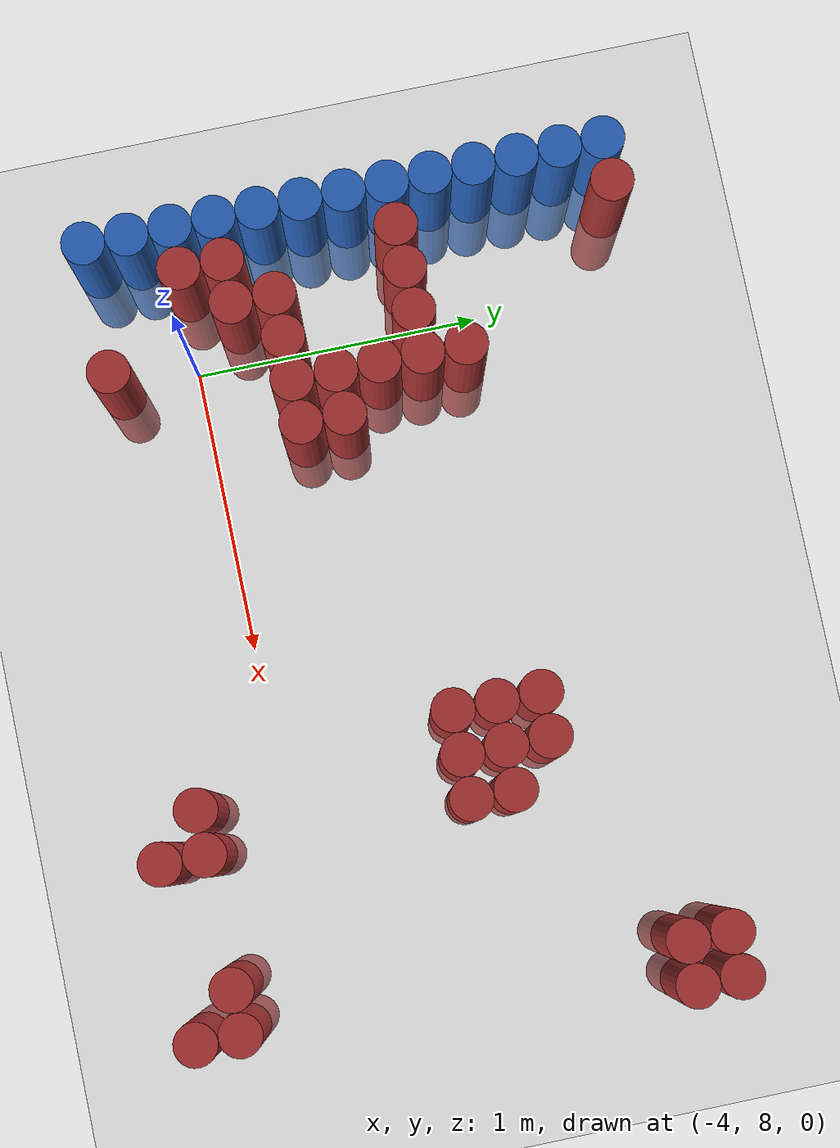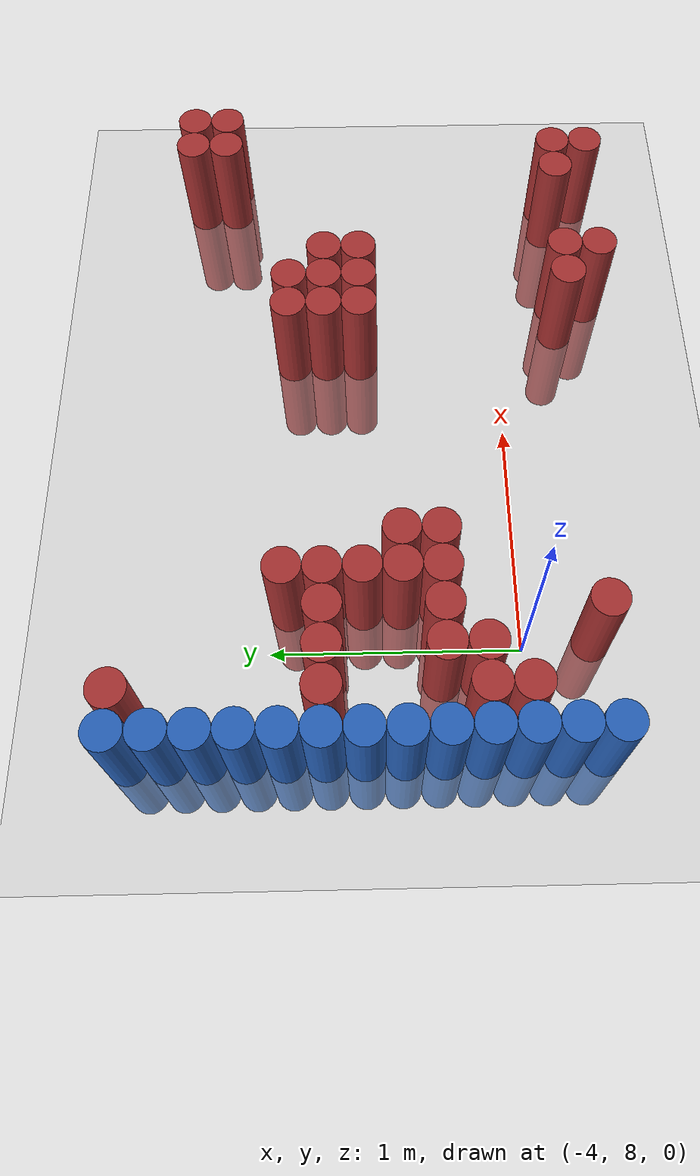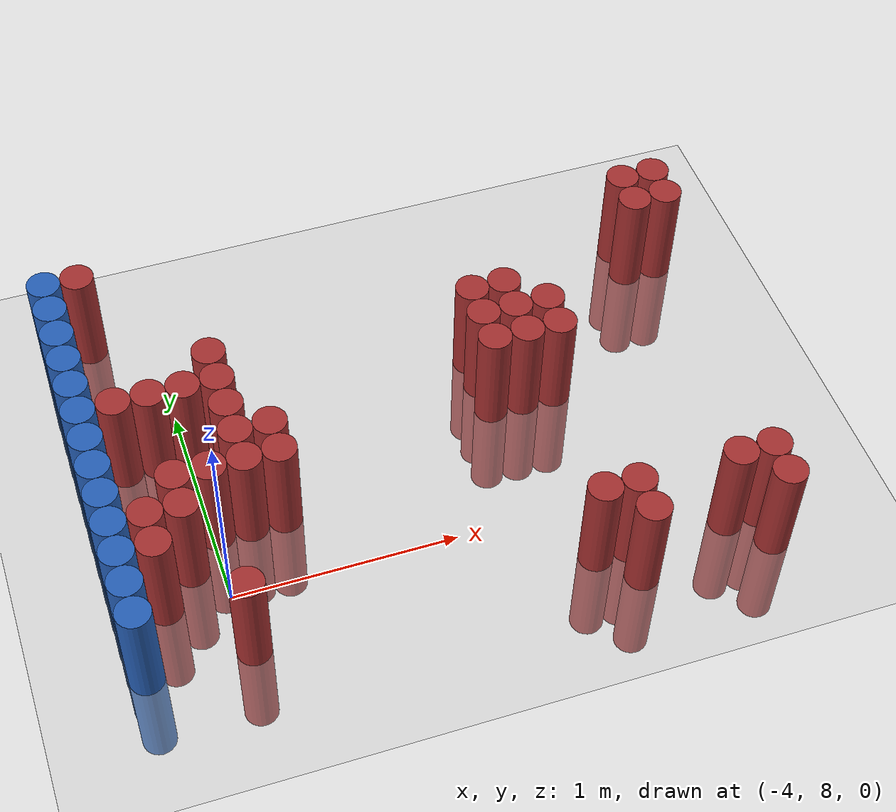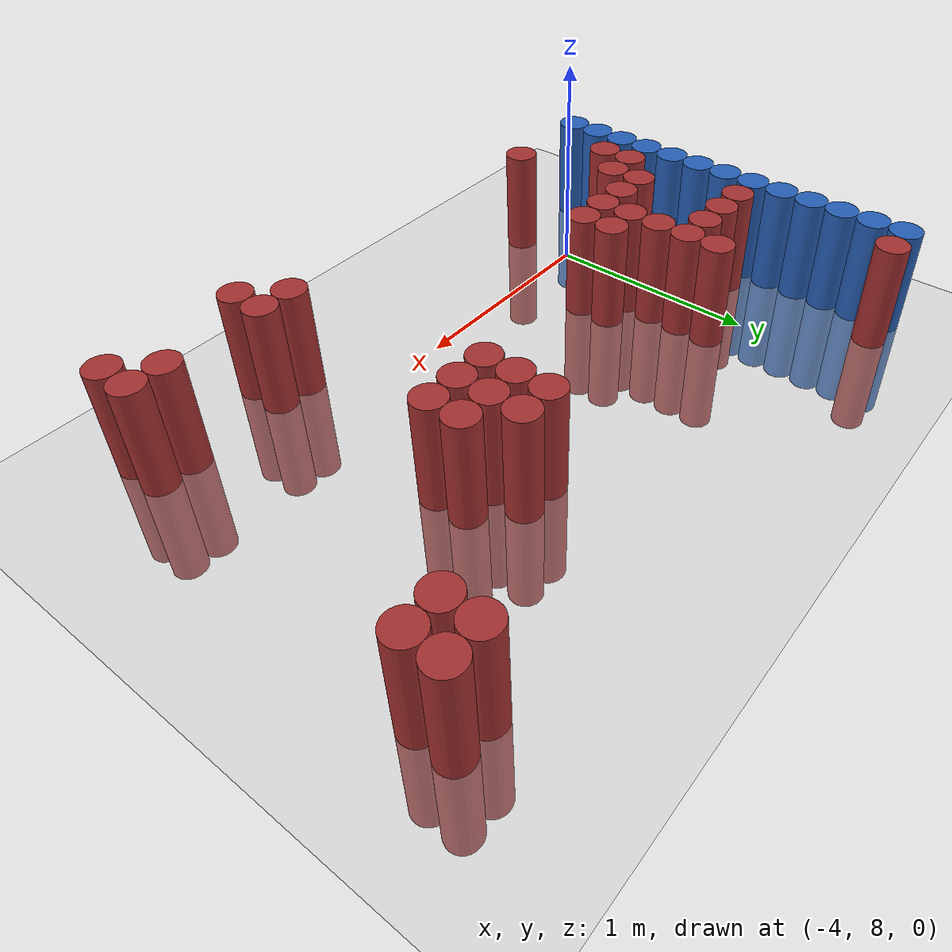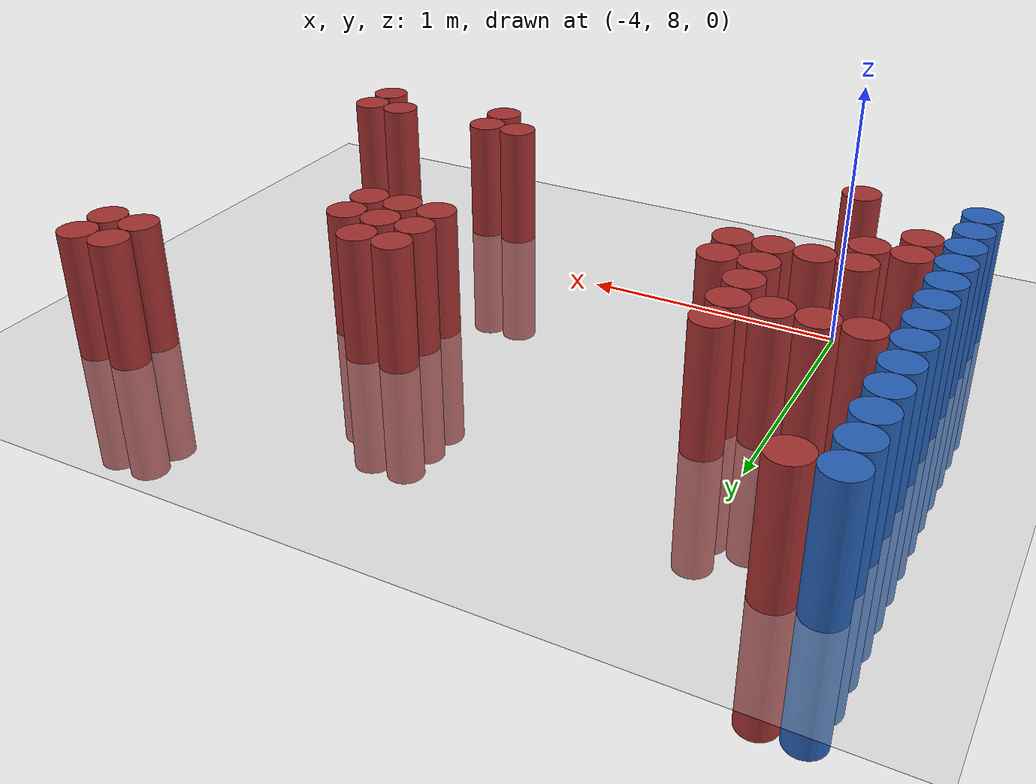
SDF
<sdf version="1.6">
 <world name="default">
  <model name="ground_plane">
   <static>1</static>
   <link name="link">
    <collision name="collision">
     <geometry><plane><normal>0 0 1</normal><size>100 100</size></plane></geometry>
     <surface><friction><ode><mu>100</mu><mu2>50</mu2></ode></friction></surface>
    </collision>
    <visual name="visual">
     <cast_shadows>0</cast_shadows>
     <geometry><plane><normal>0 0 1</normal><size>100 100</size></plane></geometry>
     <material>
      <script><uri>file://media/materials/scripts/gazebo.material</uri><name>Gazebo/Grey</name></script>
     </material>
    </visual>
   </link>
  </model>
  <model name="unit_cylinder_113">
   <static>1</static>
   <pose>-4.425000 7.725000 0.000000 0.000000 0.000000 0.000000</pose>
   <link name="link">
    <inertial>
     <mass>1</mass>
     <inertia><ixx>0.145833</ixx><ixy>0</ixy><ixz>0</ixz><iyy>0.145833</iyy><iyz>0</iyz><izz>0.125</izz></inertia>
    </inertial>
    <collision name="collision">
     <geometry><cylinder><radius>0.075000</radius><length>1</length></cylinder></geometry>
    </collision>
    <visual name="visual">
     <geometry><cylinder><radius>0.075000</radius><length>1</length></cylinder></geometry>
     <material>
      <ambient>0.152000 0.379000 0.720000 1</ambient>
      <diffuse>0.152000 0.379000 0.720000 1</diffuse>
     </material>
     <material>
      <script><name>Gazebo/Grey</name><uri>file://media/materials/scripts/gazebo.material</uri></script>
     </material>
    </visual>
   </link>
  </model>
  <model name="unit_cylinder_114">
   <static>1</static>
   <pose>-4.425000 7.875000 0.000000 0.000000 0.000000 0.000000</pose>
   <link name="link">
    <inertial>
     <mass>1</mass>
     <inertia><ixx>0.145833</ixx><ixy>0</ixy><ixz>0</ixz><iyy>0.145833</iyy><iyz>0</iyz><izz>0.125</izz></inertia>
    </inertial>
    <collision name="collision">
     <geometry><cylinder><radius>0.075000</radius><length>1</length></cylinder></geometry>
    </collision>
    <visual name="visual">
     <geometry><cylinder><radius>0.075000</radius><length>1</length></cylinder></geometry>
     <material>
      <ambient>0.152000 0.379000 0.720000 1</ambient>
      <diffuse>0.152000 0.379000 0.720000 1</diffuse>
     </material>
     <material>
      <script><name>Gazebo/Grey</name><uri>file://media/materials/scripts/gazebo.material</uri></script>
     </material>
    </visual>
   </link>
  </model>
  <model name="unit_cylinder_115">
   <static>1</static>
   <pose>-4.425000 8.025000 0.000000 0.000000 0.000000 0.000000</pose>
   <link name="link">
    <inertial>
     <mass>1</mass>
     <inertia><ixx>0.145833</ixx><ixy>0</ixy><ixz>0</ixz><iyy>0.145833</iyy><iyz>0</iyz><izz>0.125</izz></inertia>
    </inertial>
    <collision name="collision">
     <geometry><cylinder><radius>0.075000</radius><length>1</length></cylinder></geometry>
    </collision>
    <visual name="visual">
     <geometry><cylinder><radius>0.075000</radius><length>1</length></cylinder></geometry>
     <material>
      <ambient>0.152000 0.379000 0.720000 1</ambient>
      <diffuse>0.152000 0.379000 0.720000 1</diffuse>
     </material>
     <material>
      <script><name>Gazebo/Grey</name><uri>file://media/materials/scripts/gazebo.material</uri></script>
     </material>
    </visual>
   </link>
  </model>
  <model name="unit_cylinder_116">
   <static>1</static>
   <pose>-4.425000 8.175000 0.000000 0.000000 0.000000 0.000000</pose>
   <link name="link">
    <inertial>
     <mass>1</mass>
     <inertia><ixx>0.145833</ixx><ixy>0</ixy><ixz>0</ixz><iyy>0.145833</iyy><iyz>0</iyz><izz>0.125</izz></inertia>
    </inertial>
    <collision name="collision">
     <geometry><cylinder><radius>0.075000</radius><length>1</length></cylinder></geometry>
    </collision>
    <visual name="visual">
     <geometry><cylinder><radius>0.075000</radius><length>1</length></cylinder></geometry>
     <material>
      <ambient>0.152000 0.379000 0.720000 1</ambient>
      <diffuse>0.152000 0.379000 0.720000 1</diffuse>
     </material>
     <material>
      <script><name>Gazebo/Grey</name><uri>file://media/materials/scripts/gazebo.material</uri></script>
     </material>
    </visual>
   </link>
  </model>
  <model name="unit_cylinder_117">
   <static>1</static>
   <pose>-4.425000 8.325000 0.000000 0.000000 0.000000 0.000000</pose>
   <link name="link">
    <inertial>
     <mass>1</mass>
     <inertia><ixx>0.145833</ixx><ixy>0</ixy><ixz>0</ixz><iyy>0.145833</iyy><iyz>0</iyz><izz>0.125</izz></inertia>
    </inertial>
    <collision name="collision">
     <geometry><cylinder><radius>0.075000</radius><length>1</length></cylinder></geometry>
    </collision>
    <visual name="visual">
     <geometry><cylinder><radius>0.075000</radius><length>1</length></cylinder></geometry>
     <material>
      <ambient>0.152000 0.379000 0.720000 1</ambient>
      <diffuse>0.152000 0.379000 0.720000 1</diffuse>
     </material>
     <material>
      <script><name>Gazebo/Grey</name><uri>file://media/materials/scripts/gazebo.material</uri></script>
     </material>
    </visual>
   </link>
  </model>
  <model name="unit_cylinder_118">
   <static>1</static>
   <pose>-4.425000 8.475000 0.000000 0.000000 0.000000 0.000000</pose>
   <link name="link">
    <inertial>
     <mass>1</mass>
     <inertia><ixx>0.145833</ixx><ixy>0</ixy><ixz>0</ixz><iyy>0.145833</iyy><iyz>0</iyz><izz>0.125</izz></inertia>
    </inertial>
    <collision name="collision">
     <geometry><cylinder><radius>0.075000</radius><length>1</length></cylinder></geometry>
    </collision>
    <visual name="visual">
     <geometry><cylinder><radius>0.075000</radius><length>1</length></cylinder></geometry>
     <material>
      <ambient>0.152000 0.379000 0.720000 1</ambient>
      <diffuse>0.152000 0.379000 0.720000 1</diffuse>
     </material>
     <material>
      <script><name>Gazebo/Grey</name><uri>file://media/materials/scripts/gazebo.material</uri></script>
     </material>
    </visual>
   </link>
  </model>
  <model name="unit_cylinder_119">
   <static>1</static>
   <pose>-4.425000 8.625000 0.000000 0.000000 0.000000 0.000000</pose>
   <link name="link">
    <inertial>
     <mass>1</mass>
     <inertia><ixx>0.145833</ixx><ixy>0</ixy><ixz>0</ixz><iyy>0.145833</iyy><iyz>0</iyz><izz>0.125</izz></inertia>
    </inertial>
    <collision name="collision">
     <geometry><cylinder><radius>0.075000</radius><length>1</length></cylinder></geometry>
    </collision>
    <visual name="visual">
     <geometry><cylinder><radius>0.075000</radius><length>1</length></cylinder></geometry>
     <material>
      <ambient>0.152000 0.379000 0.720000 1</ambient>
      <diffuse>0.152000 0.379000 0.720000 1</diffuse>
     </material>
     <material>
      <script><name>Gazebo/Grey</name><uri>file://media/materials/scripts/gazebo.material</uri></script>
     </material>
    </visual>
   </link>
  </model>
  <model name="unit_cylinder_120">
   <static>1</static>
   <pose>-4.425000 8.775000 0.000000 0.000000 0.000000 0.000000</pose>
   <link name="link">
    <inertial>
     <mass>1</mass>
     <inertia><ixx>0.145833</ixx><ixy>0</ixy><ixz>0</ixz><iyy>0.145833</iyy><iyz>0</iyz><izz>0.125</izz></inertia>
    </inertial>
    <collision name="collision">
     <geometry><cylinder><radius>0.075000</radius><length>1</length></cylinder></geometry>
    </collision>
    <visual name="visual">
     <geometry><cylinder><radius>0.075000</radius><length>1</length></cylinder></geometry>
     <material>
      <ambient>0.152000 0.379000 0.720000 1</ambient>
      <diffuse>0.152000 0.379000 0.720000 1</diffuse>
     </material>
     <material>
      <script><name>Gazebo/Grey</name><uri>file://media/materials/scripts/gazebo.material</uri></script>
     </material>
    </visual>
   </link>
  </model>
  <model name="unit_cylinder_121">
   <static>1</static>
   <pose>-4.425000 8.925000 0.000000 0.000000 0.000000 0.000000</pose>
   <link name="link">
    <inertial>
     <mass>1</mass>
     <inertia><ixx>0.145833</ixx><ixy>0</ixy><ixz>0</ixz><iyy>0.145833</iyy><iyz>0</iyz><izz>0.125</izz></inertia>
    </inertial>
    <collision name="collision">
     <geometry><cylinder><radius>0.075000</radius><length>1</length></cylinder></geometry>
    </collision>
    <visual name="visual">
     <geometry><cylinder><radius>0.075000</radius><length>1</length></cylinder></geometry>
     <material>
      <ambient>0.152000 0.379000 0.720000 1</ambient>
      <diffuse>0.152000 0.379000 0.720000 1</diffuse>
     </material>
     <material>
      <script><name>Gazebo/Grey</name><uri>file://media/materials/scripts/gazebo.material</uri></script>
     </material>
    </visual>
   </link>
  </model>
  <model name="unit_cylinder_122">
   <static>1</static>
   <pose>-4.425000 9.075000 0.000000 0.000000 0.000000 0.000000</pose>
   <link name="link">
    <inertial>
     <mass>1</mass>
     <inertia><ixx>0.145833</ixx><ixy>0</ixy><ixz>0</ixz><iyy>0.145833</iyy><iyz>0</iyz><izz>0.125</izz></inertia>
    </inertial>
    <collision name="collision">
     <geometry><cylinder><radius>0.075000</radius><length>1</length></cylinder></geometry>
    </collision>
    <visual name="visual">
     <geometry><cylinder><radius>0.075000</radius><length>1</length></cylinder></geometry>
     <material>
      <ambient>0.152000 0.379000 0.720000 1</ambient>
      <diffuse>0.152000 0.379000 0.720000 1</diffuse>
     </material>
     <material>
      <script><name>Gazebo/Grey</name><uri>file://media/materials/scripts/gazebo.material</uri></script>
     </material>
    </visual>
   </link>
  </model>
  <model name="unit_cylinder_123">
   <static>1</static>
   <pose>-4.425000 9.225000 0.000000 0.000000 0.000000 0.000000</pose>
   <link name="link">
    <inertial>
     <mass>1</mass>
     <inertia><ixx>0.145833</ixx><ixy>0</ixy><ixz>0</ixz><iyy>0.145833</iyy><iyz>0</iyz><izz>0.125</izz></inertia>
    </inertial>
    <collision name="collision">
     <geometry><cylinder><radius>0.075000</radius><length>1</length></cylinder></geometry>
    </collision>
    <visual name="visual">
     <geometry><cylinder><radius>0.075000</radius><length>1</length></cylinder></geometry>
     <material>
      <ambient>0.152000 0.379000 0.720000 1</ambient>
      <diffuse>0.152000 0.379000 0.720000 1</diffuse>
     </material>
     <material>
      <script><name>Gazebo/Grey</name><uri>file://media/materials/scripts/gazebo.material</uri></script>
     </material>
    </visual>
   </link>
  </model>
  <model name="unit_cylinder_124">
   <static>1</static>
   <pose>-4.425000 9.375000 0.000000 0.000000 0.000000 0.000000</pose>
   <link name="link">
    <inertial>
     <mass>1</mass>
     <inertia><ixx>0.145833</ixx><ixy>0</ixy><ixz>0</ixz><iyy>0.145833</iyy><iyz>0</iyz><izz>0.125</izz></inertia>
    </inertial>
    <collision name="collision">
     <geometry><cylinder><radius>0.075000</radius><length>1</length></cylinder></geometry>
    </collision>
    <visual name="visual">
     <geometry><cylinder><radius>0.075000</radius><length>1</length></cylinder></geometry>
     <material>
      <ambient>0.152000 0.379000 0.720000 1</ambient>
      <diffuse>0.152000 0.379000 0.720000 1</diffuse>
     </material>
     <material>
      <script><name>Gazebo/Grey</name><uri>file://media/materials/scripts/gazebo.material</uri></script>
     </material>
    </visual>
   </link>
  </model>
  <model name="unit_cylinder_125">
   <static>1</static>
   <pose>-4.425000 9.525000 0.000000 0.000000 0.000000 0.000000</pose>
   <link name="link">
    <inertial>
     <mass>1</mass>
     <inertia><ixx>0.145833</ixx><ixy>0</ixy><ixz>0</ixz><iyy>0.145833</iyy><iyz>0</iyz><izz>0.125</izz></inertia>
    </inertial>
    <collision name="collision">
     <geometry><cylinder><radius>0.075000</radius><length>1</length></cylinder></geometry>
    </collision>
    <visual name="visual">
     <geometry><cylinder><radius>0.075000</radius><length>1</length></cylinder></geometry>
     <material>
      <ambient>0.152000 0.379000 0.720000 1</ambient>
      <diffuse>0.152000 0.379000 0.720000 1</diffuse>
     </material>
     <material>
      <script><name>Gazebo/Grey</name><uri>file://media/materials/scripts/gazebo.material</uri></script>
     </material>
    </visual>
   </link>
  </model>
  <model name="unit_cylinder_131">
   <static>1</static>
   <pose>-4.275000 8.025000 0.000000 0.000000 0.000000 0.000000</pose>
   <link name="link">
    <inertial>
     <mass>1</mass>
     <inertia><ixx>0.145833</ixx><ixy>0</ixy><ixz>0</ixz><iyy>0.145833</iyy><iyz>0</iyz><izz>0.125</izz></inertia>
    </inertial>
    <collision name="collision">
     <geometry><cylinder><radius>0.075000</radius><length>1</length></cylinder></geometry>
    </collision>
    <visual name="visual">
     <geometry><cylinder><radius>0.075000</radius><length>1</length></cylinder></geometry>
     <material>
      <ambient>0.648000 0.192000 0.192000 1</ambient>
      <diffuse>0.648000 0.192000 0.192000 1</diffuse>
     </material>
     <material>
      <script><name>Gazebo/Grey</name><uri>file://media/materials/scripts/gazebo.material</uri></script>
     </material>
    </visual>
   </link>
  </model>
  <model name="unit_cylinder_132">
   <static>1</static>
   <pose>-4.275000 8.175000 0.000000 0.000000 0.000000 0.000000</pose>
   <link name="link">
    <inertial>
     <mass>1</mass>
     <inertia><ixx>0.145833</ixx><ixy>0</ixy><ixz>0</ixz><iyy>0.145833</iyy><iyz>0</iyz><izz>0.125</izz></inertia>
    </inertial>
    <collision name="collision">
     <geometry><cylinder><radius>0.075000</radius><length>1</length></cylinder></geometry>
    </collision>
    <visual name="visual">
     <geometry><cylinder><radius>0.075000</radius><length>1</length></cylinder></geometry>
     <material>
      <ambient>0.648000 0.192000 0.192000 1</ambient>
      <diffuse>0.648000 0.192000 0.192000 1</diffuse>
     </material>
     <material>
      <script><name>Gazebo/Grey</name><uri>file://media/materials/scripts/gazebo.material</uri></script>
     </material>
    </visual>
   </link>
  </model>
  <model name="unit_cylinder_133">
   <static>1</static>
   <pose>-4.275000 8.775000 0.000000 0.000000 0.000000 0.000000</pose>
   <link name="link">
    <inertial>
     <mass>1</mass>
     <inertia><ixx>0.145833</ixx><ixy>0</ixy><ixz>0</ixz><iyy>0.145833</iyy><iyz>0</iyz><izz>0.125</izz></inertia>
    </inertial>
    <collision name="collision">
     <geometry><cylinder><radius>0.075000</radius><length>1</length></cylinder></geometry>
    </collision>
    <visual name="visual">
     <geometry><cylinder><radius>0.075000</radius><length>1</length></cylinder></geometry>
     <material>
      <ambient>0.648000 0.192000 0.192000 1</ambient>
      <diffuse>0.648000 0.192000 0.192000 1</diffuse>
     </material>
     <material>
      <script><name>Gazebo/Grey</name><uri>file://media/materials/scripts/gazebo.material</uri></script>
     </material>
    </visual>
   </link>
  </model>
  <model name="unit_cylinder_134">
   <static>1</static>
   <pose>-4.275000 9.525000 0.000000 0.000000 0.000000 0.000000</pose>
   <link name="link">
    <inertial>
     <mass>1</mass>
     <inertia><ixx>0.145833</ixx><ixy>0</ixy><ixz>0</ixz><iyy>0.145833</iyy><iyz>0</iyz><izz>0.125</izz></inertia>
    </inertial>
    <collision name="collision">
     <geometry><cylinder><radius>0.075000</radius><length>1</length></cylinder></geometry>
    </collision>
    <visual name="visual">
     <geometry><cylinder><radius>0.075000</radius><length>1</length></cylinder></geometry>
     <material>
      <ambient>0.648000 0.192000 0.192000 1</ambient>
      <diffuse>0.648000 0.192000 0.192000 1</diffuse>
     </material>
     <material>
      <script><name>Gazebo/Grey</name><uri>file://media/materials/scripts/gazebo.material</uri></script>
     </material>
    </visual>
   </link>
  </model>
  <model name="unit_cylinder_139">
   <static>1</static>
   <pose>-4.125000 8.175000 0.000000 0.000000 0.000000 0.000000</pose>
   <link name="link">
    <inertial>
     <mass>1</mass>
     <inertia><ixx>0.145833</ixx><ixy>0</ixy><ixz>0</ixz><iyy>0.145833</iyy><iyz>0</iyz><izz>0.125</izz></inertia>
    </inertial>
    <collision name="collision">
     <geometry><cylinder><radius>0.075000</radius><length>1</length></cylinder></geometry>
    </collision>
    <visual name="visual">
     <geometry><cylinder><radius>0.075000</radius><length>1</length></cylinder></geometry>
     <material>
      <ambient>0.648000 0.192000 0.192000 1</ambient>
      <diffuse>0.648000 0.192000 0.192000 1</diffuse>
     </material>
     <material>
      <script><name>Gazebo/Grey</name><uri>file://media/materials/scripts/gazebo.material</uri></script>
     </material>
    </visual>
   </link>
  </model>
  <model name="unit_cylinder_140">
   <static>1</static>
   <pose>-4.125000 8.325000 0.000000 0.000000 0.000000 0.000000</pose>
   <link name="link">
    <inertial>
     <mass>1</mass>
     <inertia><ixx>0.145833</ixx><ixy>0</ixy><ixz>0</ixz><iyy>0.145833</iyy><iyz>0</iyz><izz>0.125</izz></inertia>
    </inertial>
    <collision name="collision">
     <geometry><cylinder><radius>0.075000</radius><length>1</length></cylinder></geometry>
    </collision>
    <visual name="visual">
     <geometry><cylinder><radius>0.075000</radius><length>1</length></cylinder></geometry>
     <material>
      <ambient>0.648000 0.192000 0.192000 1</ambient>
      <diffuse>0.648000 0.192000 0.192000 1</diffuse>
     </material>
     <material>
      <script><name>Gazebo/Grey</name><uri>file://media/materials/scripts/gazebo.material</uri></script>
     </material>
    </visual>
   </link>
  </model>
  <model name="unit_cylinder_141">
   <static>1</static>
   <pose>-4.125000 8.775000 0.000000 0.000000 0.000000 0.000000</pose>
   <link name="link">
    <inertial>
     <mass>1</mass>
     <inertia><ixx>0.145833</ixx><ixy>0</ixy><ixz>0</ixz><iyy>0.145833</iyy><iyz>0</iyz><izz>0.125</izz></inertia>
    </inertial>
    <collision name="collision">
     <geometry><cylinder><radius>0.075000</radius><length>1</length></cylinder></geometry>
    </collision>
    <visual name="visual">
     <geometry><cylinder><radius>0.075000</radius><length>1</length></cylinder></geometry>
     <material>
      <ambient>0.648000 0.192000 0.192000 1</ambient>
      <diffuse>0.648000 0.192000 0.192000 1</diffuse>
     </material>
     <material>
      <script><name>Gazebo/Grey</name><uri>file://media/materials/scripts/gazebo.material</uri></script>
     </material>
    </visual>
   </link>
  </model>
  <model name="unit_cylinder_148">
   <static>1</static>
   <pose>-3.975000 7.725000 0.000000 0.000000 0.000000 0.000000</pose>
   <link name="link">
    <inertial>
     <mass>1</mass>
     <inertia><ixx>0.145833</ixx><ixy>0</ixy><ixz>0</ixz><iyy>0.145833</iyy><iyz>0</iyz><izz>0.125</izz></inertia>
    </inertial>
    <collision name="collision">
     <geometry><cylinder><radius>0.075000</radius><length>1</length></cylinder></geometry>
    </collision>
    <visual name="visual">
     <geometry><cylinder><radius>0.075000</radius><length>1</length></cylinder></geometry>
     <material>
      <ambient>0.648000 0.192000 0.192000 1</ambient>
      <diffuse>0.648000 0.192000 0.192000 1</diffuse>
     </material>
     <material>
      <script><name>Gazebo/Grey</name><uri>file://media/materials/scripts/gazebo.material</uri></script>
     </material>
    </visual>
   </link>
  </model>
  <model name="unit_cylinder_149">
   <static>1</static>
   <pose>-3.975000 8.325000 0.000000 0.000000 0.000000 0.000000</pose>
   <link name="link">
    <inertial>
     <mass>1</mass>
     <inertia><ixx>0.145833</ixx><ixy>0</ixy><ixz>0</ixz><iyy>0.145833</iyy><iyz>0</iyz><izz>0.125</izz></inertia>
    </inertial>
    <collision name="collision">
     <geometry><cylinder><radius>0.075000</radius><length>1</length></cylinder></geometry>
    </collision>
    <visual name="visual">
     <geometry><cylinder><radius>0.075000</radius><length>1</length></cylinder></geometry>
     <material>
      <ambient>0.648000 0.192000 0.192000 1</ambient>
      <diffuse>0.648000 0.192000 0.192000 1</diffuse>
     </material>
     <material>
      <script><name>Gazebo/Grey</name><uri>file://media/materials/scripts/gazebo.material</uri></script>
     </material>
    </visual>
   </link>
  </model>
  <model name="unit_cylinder_150">
   <static>1</static>
   <pose>-3.975000 8.775000 0.000000 0.000000 0.000000 0.000000</pose>
   <link name="link">
    <inertial>
     <mass>1</mass>
     <inertia><ixx>0.145833</ixx><ixy>0</ixy><ixz>0</ixz><iyy>0.145833</iyy><iyz>0</iyz><izz>0.125</izz></inertia>
    </inertial>
    <collision name="collision">
     <geometry><cylinder><radius>0.075000</radius><length>1</length></cylinder></geometry>
    </collision>
    <visual name="visual">
     <geometry><cylinder><radius>0.075000</radius><length>1</length></cylinder></geometry>
     <material>
      <ambient>0.648000 0.192000 0.192000 1</ambient>
      <diffuse>0.648000 0.192000 0.192000 1</diffuse>
     </material>
     <material>
      <script><name>Gazebo/Grey</name><uri>file://media/materials/scripts/gazebo.material</uri></script>
     </material>
    </visual>
   </link>
  </model>
  <model name="unit_cylinder_159">
   <static>1</static>
   <pose>-3.825000 8.325000 0.000000 0.000000 0.000000 0.000000</pose>
   <link name="link">
    <inertial>
     <mass>1</mass>
     <inertia><ixx>0.145833</ixx><ixy>0</ixy><ixz>0</ixz><iyy>0.145833</iyy><iyz>0</iyz><izz>0.125</izz></inertia>
    </inertial>
    <collision name="collision">
     <geometry><cylinder><radius>0.075000</radius><length>1</length></cylinder></geometry>
    </collision>
    <visual name="visual">
     <geometry><cylinder><radius>0.075000</radius><length>1</length></cylinder></geometry>
     <material>
      <ambient>0.648000 0.192000 0.192000 1</ambient>
      <diffuse>0.648000 0.192000 0.192000 1</diffuse>
     </material>
     <material>
      <script><name>Gazebo/Grey</name><uri>file://media/materials/scripts/gazebo.material</uri></script>
     </material>
    </visual>
   </link>
  </model>
  <model name="unit_cylinder_160">
   <static>1</static>
   <pose>-3.825000 8.475000 0.000000 0.000000 0.000000 0.000000</pose>
   <link name="link">
    <inertial>
     <mass>1</mass>
     <inertia><ixx>0.145833</ixx><ixy>0</ixy><ixz>0</ixz><iyy>0.145833</iyy><iyz>0</iyz><izz>0.125</izz></inertia>
    </inertial>
    <collision name="collision">
     <geometry><cylinder><radius>0.075000</radius><length>1</length></cylinder></geometry>
    </collision>
    <visual name="visual">
     <geometry><cylinder><radius>0.075000</radius><length>1</length></cylinder></geometry>
     <material>
      <ambient>0.648000 0.192000 0.192000 1</ambient>
      <diffuse>0.648000 0.192000 0.192000 1</diffuse>
     </material>
     <material>
      <script><name>Gazebo/Grey</name><uri>file://media/materials/scripts/gazebo.material</uri></script>
     </material>
    </visual>
   </link>
  </model>
  <model name="unit_cylinder_161">
   <static>1</static>
   <pose>-3.825000 8.625000 0.000000 0.000000 0.000000 0.000000</pose>
   <link name="link">
    <inertial>
     <mass>1</mass>
     <inertia><ixx>0.145833</ixx><ixy>0</ixy><ixz>0</ixz><iyy>0.145833</iyy><iyz>0</iyz><izz>0.125</izz></inertia>
    </inertial>
    <collision name="collision">
     <geometry><cylinder><radius>0.075000</radius><length>1</length></cylinder></geometry>
    </collision>
    <visual name="visual">
     <geometry><cylinder><radius>0.075000</radius><length>1</length></cylinder></geometry>
     <material>
      <ambient>0.648000 0.192000 0.192000 1</ambient>
      <diffuse>0.648000 0.192000 0.192000 1</diffuse>
     </material>
     <material>
      <script><name>Gazebo/Grey</name><uri>file://media/materials/scripts/gazebo.material</uri></script>
     </material>
    </visual>
   </link>
  </model>
  <model name="unit_cylinder_162">
   <static>1</static>
   <pose>-3.825000 8.775000 0.000000 0.000000 0.000000 0.000000</pose>
   <link name="link">
    <inertial>
     <mass>1</mass>
     <inertia><ixx>0.145833</ixx><ixy>0</ixy><ixz>0</ixz><iyy>0.145833</iyy><iyz>0</iyz><izz>0.125</izz></inertia>
    </inertial>
    <collision name="collision">
     <geometry><cylinder><radius>0.075000</radius><length>1</length></cylinder></geometry>
    </collision>
    <visual name="visual">
     <geometry><cylinder><radius>0.075000</radius><length>1</length></cylinder></geometry>
     <material>
      <ambient>0.648000 0.192000 0.192000 1</ambient>
      <diffuse>0.648000 0.192000 0.192000 1</diffuse>
     </material>
     <material>
      <script><name>Gazebo/Grey</name><uri>file://media/materials/scripts/gazebo.material</uri></script>
     </material>
    </visual>
   </link>
  </model>
  <model name="unit_cylinder_163">
   <static>1</static>
   <pose>-3.825000 8.925000 0.000000 0.000000 0.000000 0.000000</pose>
   <link name="link">
    <inertial>
     <mass>1</mass>
     <inertia><ixx>0.145833</ixx><ixy>0</ixy><ixz>0</ixz><iyy>0.145833</iyy><iyz>0</iyz><izz>0.125</izz></inertia>
    </inertial>
    <collision name="collision">
     <geometry><cylinder><radius>0.075000</radius><length>1</length></cylinder></geometry>
    </collision>
    <visual name="visual">
     <geometry><cylinder><radius>0.075000</radius><length>1</length></cylinder></geometry>
     <material>
      <ambient>0.648000 0.192000 0.192000 1</ambient>
      <diffuse>0.648000 0.192000 0.192000 1</diffuse>
     </material>
     <material>
      <script><name>Gazebo/Grey</name><uri>file://media/materials/scripts/gazebo.material</uri></script>
     </material>
    </visual>
   </link>
  </model>
  <model name="unit_cylinder_169">
   <static>1</static>
   <pose>-3.675000 8.325000 0.000000 0.000000 0.000000 0.000000</pose>
   <link name="link">
    <inertial>
     <mass>1</mass>
     <inertia><ixx>0.145833</ixx><ixy>0</ixy><ixz>0</ixz><iyy>0.145833</iyy><iyz>0</iyz><izz>0.125</izz></inertia>
    </inertial>
    <collision name="collision">
     <geometry><cylinder><radius>0.075000</radius><length>1</length></cylinder></geometry>
    </collision>
    <visual name="visual">
     <geometry><cylinder><radius>0.075000</radius><length>1</length></cylinder></geometry>
     <material>
      <ambient>0.648000 0.192000 0.192000 1</ambient>
      <diffuse>0.648000 0.192000 0.192000 1</diffuse>
     </material>
     <material>
      <script><name>Gazebo/Grey</name><uri>file://media/materials/scripts/gazebo.material</uri></script>
     </material>
    </visual>
   </link>
  </model>
  <model name="unit_cylinder_170">
   <static>1</static>
   <pose>-3.675000 8.475000 0.000000 0.000000 0.000000 0.000000</pose>
   <link name="link">
    <inertial>
     <mass>1</mass>
     <inertia><ixx>0.145833</ixx><ixy>0</ixy><ixz>0</ixz><iyy>0.145833</iyy><iyz>0</iyz><izz>0.125</izz></inertia>
    </inertial>
    <collision name="collision">
     <geometry><cylinder><radius>0.075000</radius><length>1</length></cylinder></geometry>
    </collision>
    <visual name="visual">
     <geometry><cylinder><radius>0.075000</radius><length>1</length></cylinder></geometry>
     <material>
      <ambient>0.648000 0.192000 0.192000 1</ambient>
      <diffuse>0.648000 0.192000 0.192000 1</diffuse>
     </material>
     <material>
      <script><name>Gazebo/Grey</name><uri>file://media/materials/scripts/gazebo.material</uri></script>
     </material>
    </visual>
   </link>
  </model>
  <model name="unit_cylinder_181">
   <static>1</static>
   <pose>-2.625000 8.625000 0.000000 0.000000 0.000000 0.000000</pose>
   <link name="link">
    <inertial>
     <mass>1</mass>
     <inertia><ixx>0.145833</ixx><ixy>0</ixy><ixz>0</ixz><iyy>0.145833</iyy><iyz>0</iyz><izz>0.125</izz></inertia>
    </inertial>
    <collision name="collision">
     <geometry><cylinder><radius>0.075000</radius><length>1</length></cylinder></geometry>
    </collision>
    <visual name="visual">
     <geometry><cylinder><radius>0.075000</radius><length>1</length></cylinder></geometry>
     <material>
      <ambient>0.648000 0.192000 0.192000 1</ambient>
      <diffuse>0.648000 0.192000 0.192000 1</diffuse>
     </material>
     <material>
      <script><name>Gazebo/Grey</name><uri>file://media/materials/scripts/gazebo.material</uri></script>
     </material>
    </visual>
   </link>
  </model>
  <model name="unit_cylinder_182">
   <static>1</static>
   <pose>-2.625000 8.775000 0.000000 0.000000 0.000000 0.000000</pose>
   <link name="link">
    <inertial>
     <mass>1</mass>
     <inertia><ixx>0.145833</ixx><ixy>0</ixy><ixz>0</ixz><iyy>0.145833</iyy><iyz>0</iyz><izz>0.125</izz></inertia>
    </inertial>
    <collision name="collision">
     <geometry><cylinder><radius>0.075000</radius><length>1</length></cylinder></geometry>
    </collision>
    <visual name="visual">
     <geometry><cylinder><radius>0.075000</radius><length>1</length></cylinder></geometry>
     <material>
      <ambient>0.648000 0.192000 0.192000 1</ambient>
      <diffuse>0.648000 0.192000 0.192000 1</diffuse>
     </material>
     <material>
      <script><name>Gazebo/Grey</name><uri>file://media/materials/scripts/gazebo.material</uri></script>
     </material>
    </visual>
   </link>
  </model>
  <model name="unit_cylinder_183">
   <static>1</static>
   <pose>-2.625000 8.925000 0.000000 0.000000 0.000000 0.000000</pose>
   <link name="link">
    <inertial>
     <mass>1</mass>
     <inertia><ixx>0.145833</ixx><ixy>0</ixy><ixz>0</ixz><iyy>0.145833</iyy><iyz>0</iyz><izz>0.125</izz></inertia>
    </inertial>
    <collision name="collision">
     <geometry><cylinder><radius>0.075000</radius><length>1</length></cylinder></geometry>
    </collision>
    <visual name="visual">
     <geometry><cylinder><radius>0.075000</radius><length>1</length></cylinder></geometry>
     <material>
      <ambient>0.648000 0.192000 0.192000 1</ambient>
      <diffuse>0.648000 0.192000 0.192000 1</diffuse>
     </material>
     <material>
      <script><name>Gazebo/Grey</name><uri>file://media/materials/scripts/gazebo.material</uri></script>
     </material>
    </visual>
   </link>
  </model>
  <model name="unit_cylinder_184">
   <static>1</static>
   <pose>-2.475000 7.725000 0.000000 0.000000 0.000000 0.000000</pose>
   <link name="link">
    <inertial>
     <mass>1</mass>
     <inertia><ixx>0.145833</ixx><ixy>0</ixy><ixz>0</ixz><iyy>0.145833</iyy><iyz>0</iyz><izz>0.125</izz></inertia>
    </inertial>
    <collision name="collision">
     <geometry><cylinder><radius>0.075000</radius><length>1</length></cylinder></geometry>
    </collision>
    <visual name="visual">
     <geometry><cylinder><radius>0.075000</radius><length>1</length></cylinder></geometry>
     <material>
      <ambient>0.648000 0.192000 0.192000 1</ambient>
      <diffuse>0.648000 0.192000 0.192000 1</diffuse>
     </material>
     <material>
      <script><name>Gazebo/Grey</name><uri>file://media/materials/scripts/gazebo.material</uri></script>
     </material>
    </visual>
   </link>
  </model>
  <model name="unit_cylinder_185">
   <static>1</static>
   <pose>-2.475000 8.625000 0.000000 0.000000 0.000000 0.000000</pose>
   <link name="link">
    <inertial>
     <mass>1</mass>
     <inertia><ixx>0.145833</ixx><ixy>0</ixy><ixz>0</ixz><iyy>0.145833</iyy><iyz>0</iyz><izz>0.125</izz></inertia>
    </inertial>
    <collision name="collision">
     <geometry><cylinder><radius>0.075000</radius><length>1</length></cylinder></geometry>
    </collision>
    <visual name="visual">
     <geometry><cylinder><radius>0.075000</radius><length>1</length></cylinder></geometry>
     <material>
      <ambient>0.648000 0.192000 0.192000 1</ambient>
      <diffuse>0.648000 0.192000 0.192000 1</diffuse>
     </material>
     <material>
      <script><name>Gazebo/Grey</name><uri>file://media/materials/scripts/gazebo.material</uri></script>
     </material>
    </visual>
   </link>
  </model>
  <model name="unit_cylinder_186">
   <static>1</static>
   <pose>-2.475000 8.775000 0.000000 0.000000 0.000000 0.000000</pose>
   <link name="link">
    <inertial>
     <mass>1</mass>
     <inertia><ixx>0.145833</ixx><ixy>0</ixy><ixz>0</ixz><iyy>0.145833</iyy><iyz>0</iyz><izz>0.125</izz></inertia>
    </inertial>
    <collision name="collision">
     <geometry><cylinder><radius>0.075000</radius><length>1</length></cylinder></geometry>
    </collision>
    <visual name="visual">
     <geometry><cylinder><radius>0.075000</radius><length>1</length></cylinder></geometry>
     <material>
      <ambient>0.648000 0.192000 0.192000 1</ambient>
      <diffuse>0.648000 0.192000 0.192000 1</diffuse>
     </material>
     <material>
      <script><name>Gazebo/Grey</name><uri>file://media/materials/scripts/gazebo.material</uri></script>
     </material>
    </visual>
   </link>
  </model>
  <model name="unit_cylinder_187">
   <static>1</static>
   <pose>-2.475000 8.925000 0.000000 0.000000 0.000000 0.000000</pose>
   <link name="link">
    <inertial>
     <mass>1</mass>
     <inertia><ixx>0.145833</ixx><ixy>0</ixy><ixz>0</ixz><iyy>0.145833</iyy><iyz>0</iyz><izz>0.125</izz></inertia>
    </inertial>
    <collision name="collision">
     <geometry><cylinder><radius>0.075000</radius><length>1</length></cylinder></geometry>
    </collision>
    <visual name="visual">
     <geometry><cylinder><radius>0.075000</radius><length>1</length></cylinder></geometry>
     <material>
      <ambient>0.648000 0.192000 0.192000 1</ambient>
      <diffuse>0.648000 0.192000 0.192000 1</diffuse>
     </material>
     <material>
      <script><name>Gazebo/Grey</name><uri>file://media/materials/scripts/gazebo.material</uri></script>
     </material>
    </visual>
   </link>
  </model>
  <model name="unit_cylinder_188">
   <static>1</static>
   <pose>-2.325000 7.575000 0.000000 0.000000 0.000000 0.000000</pose>
   <link name="link">
    <inertial>
     <mass>1</mass>
     <inertia><ixx>0.145833</ixx><ixy>0</ixy><ixz>0</ixz><iyy>0.145833</iyy><iyz>0</iyz><izz>0.125</izz></inertia>
    </inertial>
    <collision name="collision">
     <geometry><cylinder><radius>0.075000</radius><length>1</length></cylinder></geometry>
    </collision>
    <visual name="visual">
     <geometry><cylinder><radius>0.075000</radius><length>1</length></cylinder></geometry>
     <material>
      <ambient>0.648000 0.192000 0.192000 1</ambient>
      <diffuse>0.648000 0.192000 0.192000 1</diffuse>
     </material>
     <material>
      <script><name>Gazebo/Grey</name><uri>file://media/materials/scripts/gazebo.material</uri></script>
     </material>
    </visual>
   </link>
  </model>
  <model name="unit_cylinder_189">
   <static>1</static>
   <pose>-2.325000 7.725000 0.000000 0.000000 0.000000 0.000000</pose>
   <link name="link">
    <inertial>
     <mass>1</mass>
     <inertia><ixx>0.145833</ixx><ixy>0</ixy><ixz>0</ixz><iyy>0.145833</iyy><iyz>0</iyz><izz>0.125</izz></inertia>
    </inertial>
    <collision name="collision">
     <geometry><cylinder><radius>0.075000</radius><length>1</length></cylinder></geometry>
    </collision>
    <visual name="visual">
     <geometry><cylinder><radius>0.075000</radius><length>1</length></cylinder></geometry>
     <material>
      <ambient>0.648000 0.192000 0.192000 1</ambient>
      <diffuse>0.648000 0.192000 0.192000 1</diffuse>
     </material>
     <material>
      <script><name>Gazebo/Grey</name><uri>file://media/materials/scripts/gazebo.material</uri></script>
     </material>
    </visual>
   </link>
  </model>
  <model name="unit_cylinder_190">
   <static>1</static>
   <pose>-2.325000 8.625000 0.000000 0.000000 0.000000 0.000000</pose>
   <link name="link">
    <inertial>
     <mass>1</mass>
     <inertia><ixx>0.145833</ixx><ixy>0</ixy><ixz>0</ixz><iyy>0.145833</iyy><iyz>0</iyz><izz>0.125</izz></inertia>
    </inertial>
    <collision name="collision">
     <geometry><cylinder><radius>0.075000</radius><length>1</length></cylinder></geometry>
    </collision>
    <visual name="visual">
     <geometry><cylinder><radius>0.075000</radius><length>1</length></cylinder></geometry>
     <material>
      <ambient>0.648000 0.192000 0.192000 1</ambient>
      <diffuse>0.648000 0.192000 0.192000 1</diffuse>
     </material>
     <material>
      <script><name>Gazebo/Grey</name><uri>file://media/materials/scripts/gazebo.material</uri></script>
     </material>
    </visual>
   </link>
  </model>
  <model name="unit_cylinder_191">
   <static>1</static>
   <pose>-2.325000 8.775000 0.000000 0.000000 0.000000 0.000000</pose>
   <link name="link">
    <inertial>
     <mass>1</mass>
     <inertia><ixx>0.145833</ixx><ixy>0</ixy><ixz>0</ixz><iyy>0.145833</iyy><iyz>0</iyz><izz>0.125</izz></inertia>
    </inertial>
    <collision name="collision">
     <geometry><cylinder><radius>0.075000</radius><length>1</length></cylinder></geometry>
    </collision>
    <visual name="visual">
     <geometry><cylinder><radius>0.075000</radius><length>1</length></cylinder></geometry>
     <material>
      <ambient>0.648000 0.192000 0.192000 1</ambient>
      <diffuse>0.648000 0.192000 0.192000 1</diffuse>
     </material>
     <material>
      <script><name>Gazebo/Grey</name><uri>file://media/materials/scripts/gazebo.material</uri></script>
     </material>
    </visual>
   </link>
  </model>
  <model name="unit_cylinder_199">
   <static>1</static>
   <pose>-1.875000 7.725000 0.000000 0.000000 0.000000 0.000000</pose>
   <link name="link">
    <inertial>
     <mass>1</mass>
     <inertia><ixx>0.145833</ixx><ixy>0</ixy><ixz>0</ixz><iyy>0.145833</iyy><iyz>0</iyz><izz>0.125</izz></inertia>
    </inertial>
    <collision name="collision">
     <geometry><cylinder><radius>0.075000</radius><length>1</length></cylinder></geometry>
    </collision>
    <visual name="visual">
     <geometry><cylinder><radius>0.075000</radius><length>1</length></cylinder></geometry>
     <material>
      <ambient>0.648000 0.192000 0.192000 1</ambient>
      <diffuse>0.648000 0.192000 0.192000 1</diffuse>
     </material>
     <material>
      <script><name>Gazebo/Grey</name><uri>file://media/materials/scripts/gazebo.material</uri></script>
     </material>
    </visual>
   </link>
  </model>
  <model name="unit_cylinder_207">
   <static>1</static>
   <pose>-1.725000 7.575000 0.000000 0.000000 0.000000 0.000000</pose>
   <link name="link">
    <inertial>
     <mass>1</mass>
     <inertia><ixx>0.145833</ixx><ixy>0</ixy><ixz>0</ixz><iyy>0.145833</iyy><iyz>0</iyz><izz>0.125</izz></inertia>
    </inertial>
    <collision name="collision">
     <geometry><cylinder><radius>0.075000</radius><length>1</length></cylinder></geometry>
    </collision>
    <visual name="visual">
     <geometry><cylinder><radius>0.075000</radius><length>1</length></cylinder></geometry>
     <material>
      <ambient>0.648000 0.192000 0.192000 1</ambient>
      <diffuse>0.648000 0.192000 0.192000 1</diffuse>
     </material>
     <material>
      <script><name>Gazebo/Grey</name><uri>file://media/materials/scripts/gazebo.material</uri></script>
     </material>
    </visual>
   </link>
  </model>
  <model name="unit_cylinder_208">
   <static>1</static>
   <pose>-1.725000 7.725000 0.000000 0.000000 0.000000 0.000000</pose>
   <link name="link">
    <inertial>
     <mass>1</mass>
     <inertia><ixx>0.145833</ixx><ixy>0</ixy><ixz>0</ixz><iyy>0.145833</iyy><iyz>0</iyz><izz>0.125</izz></inertia>
    </inertial>
    <collision name="collision">
     <geometry><cylinder><radius>0.075000</radius><length>1</length></cylinder></geometry>
    </collision>
    <visual name="visual">
     <geometry><cylinder><radius>0.075000</radius><length>1</length></cylinder></geometry>
     <material>
      <ambient>0.648000 0.192000 0.192000 1</ambient>
      <diffuse>0.648000 0.192000 0.192000 1</diffuse>
     </material>
     <material>
      <script><name>Gazebo/Grey</name><uri>file://media/materials/scripts/gazebo.material</uri></script>
     </material>
    </visual>
   </link>
  </model>
  <model name="unit_cylinder_209">
   <static>1</static>
   <pose>-1.725000 9.225000 0.000000 0.000000 0.000000 0.000000</pose>
   <link name="link">
    <inertial>
     <mass>1</mass>
     <inertia><ixx>0.145833</ixx><ixy>0</ixy><ixz>0</ixz><iyy>0.145833</iyy><iyz>0</iyz><izz>0.125</izz></inertia>
    </inertial>
    <collision name="collision">
     <geometry><cylinder><radius>0.075000</radius><length>1</length></cylinder></geometry>
    </collision>
    <visual name="visual">
     <geometry><cylinder><radius>0.075000</radius><length>1</length></cylinder></geometry>
     <material>
      <ambient>0.648000 0.192000 0.192000 1</ambient>
      <diffuse>0.648000 0.192000 0.192000 1</diffuse>
     </material>
     <material>
      <script><name>Gazebo/Grey</name><uri>file://media/materials/scripts/gazebo.material</uri></script>
     </material>
    </visual>
   </link>
  </model>
  <model name="unit_cylinder_210">
   <static>1</static>
   <pose>-1.725000 9.375000 0.000000 0.000000 0.000000 0.000000</pose>
   <link name="link">
    <inertial>
     <mass>1</mass>
     <inertia><ixx>0.145833</ixx><ixy>0</ixy><ixz>0</ixz><iyy>0.145833</iyy><iyz>0</iyz><izz>0.125</izz></inertia>
    </inertial>
    <collision name="collision">
     <geometry><cylinder><radius>0.075000</radius><length>1</length></cylinder></geometry>
    </collision>
    <visual name="visual">
     <geometry><cylinder><radius>0.075000</radius><length>1</length></cylinder></geometry>
     <material>
      <ambient>0.648000 0.192000 0.192000 1</ambient>
      <diffuse>0.648000 0.192000 0.192000 1</diffuse>
     </material>
     <material>
      <script><name>Gazebo/Grey</name><uri>file://media/materials/scripts/gazebo.material</uri></script>
     </material>
    </visual>
   </link>
  </model>
  <model name="unit_cylinder_215">
   <static>1</static>
   <pose>-1.575000 9.225000 0.000000 0.000000 0.000000 0.000000</pose>
   <link name="link">
    <inertial>
     <mass>1</mass>
     <inertia><ixx>0.145833</ixx><ixy>0</ixy><ixz>0</ixz><iyy>0.145833</iyy><iyz>0</iyz><izz>0.125</izz></inertia>
    </inertial>
    <collision name="collision">
     <geometry><cylinder><radius>0.075000</radius><length>1</length></cylinder></geometry>
    </collision>
    <visual name="visual">
     <geometry><cylinder><radius>0.075000</radius><length>1</length></cylinder></geometry>
     <material>
      <ambient>0.648000 0.192000 0.192000 1</ambient>
      <diffuse>0.648000 0.192000 0.192000 1</diffuse>
     </material>
     <material>
      <script><name>Gazebo/Grey</name><uri>file://media/materials/scripts/gazebo.material</uri></script>
     </material>
    </visual>
   </link>
  </model>
  <model name="unit_cylinder_216">
   <static>1</static>
   <pose>-1.575000 9.375000 0.000000 0.000000 0.000000 0.000000</pose>
   <link name="link">
    <inertial>
     <mass>1</mass>
     <inertia><ixx>0.145833</ixx><ixy>0</ixy><ixz>0</ixz><iyy>0.145833</iyy><iyz>0</iyz><izz>0.125</izz></inertia>
    </inertial>
    <collision name="collision">
     <geometry><cylinder><radius>0.075000</radius><length>1</length></cylinder></geometry>
    </collision>
    <visual name="visual">
     <geometry><cylinder><radius>0.075000</radius><length>1</length></cylinder></geometry>
     <material>
      <ambient>0.648000 0.192000 0.192000 1</ambient>
      <diffuse>0.648000 0.192000 0.192000 1</diffuse>
     </material>
     <material>
      <script><name>Gazebo/Grey</name><uri>file://media/materials/scripts/gazebo.material</uri></script>
     </material>
    </visual>
   </link>
  </model>
 </world>
</sdf>
